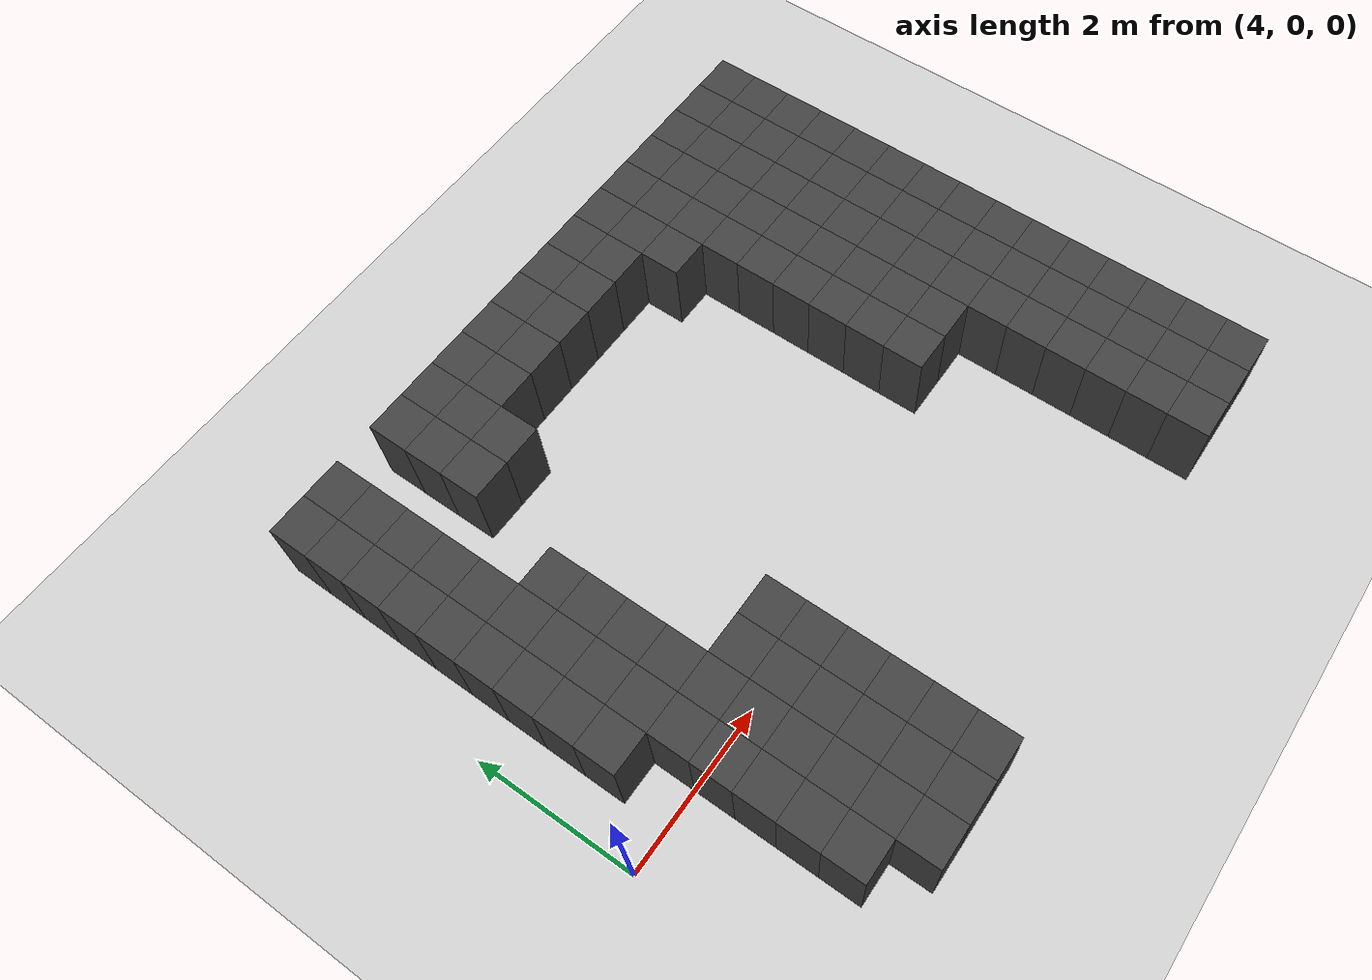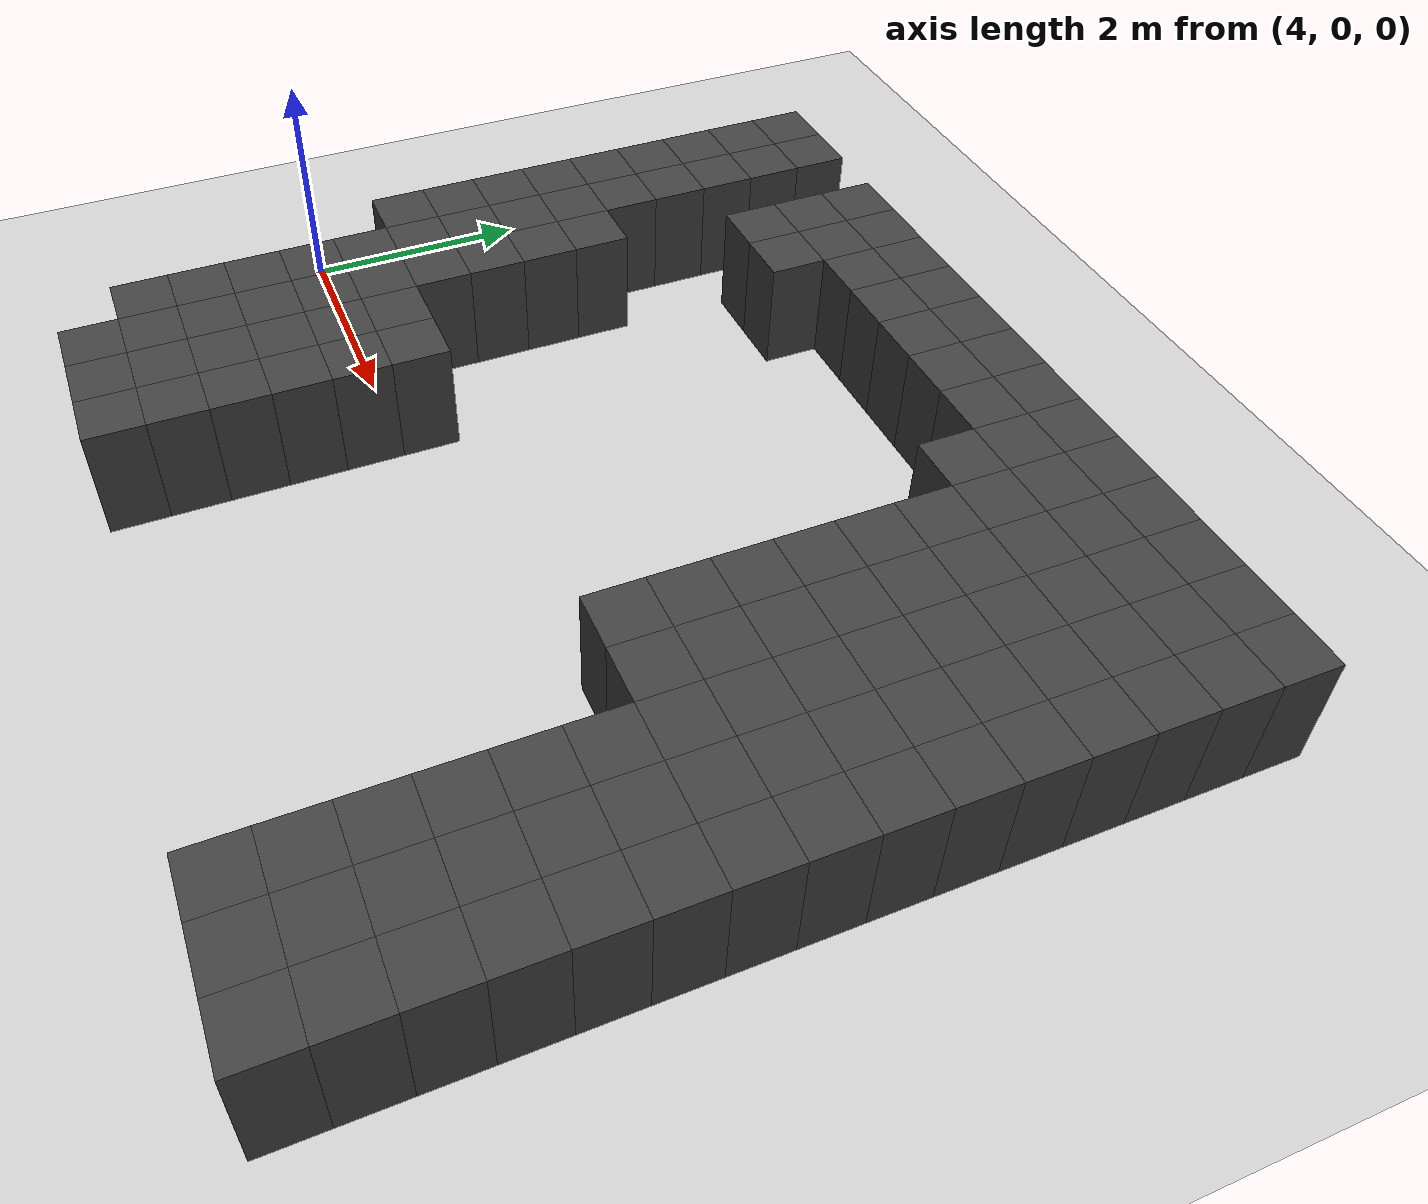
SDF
<sdf version="1.7">
 <world name="map_14056">
  <model name="ground_plane">
   <static>true</static>
   <link name="link">
    <collision name="collision">
     <geometry><plane><normal>0 0 1</normal><size>200 200</size></plane></geometry>
    </collision>
    <visual name="visual">
     <geometry><plane><normal>0 0 1</normal><size>200 200</size></plane></geometry>
     <material><ambient>0.8 0.8 0.8 1</ambient><diffuse>0.8 0.8 0.8 1</diffuse></material>
    </visual>
   </link>
  </model>
  <model name="maze_environment">
   <static>true</static>
   <link name="wall_511">
    <pose>4.750 4.750 0.500 0 0 0</pose>
    <collision name="col"><geometry><box><size>0.5 0.5 1.0</size></box></geometry></collision>
    <visual name="vis">
     <geometry><box><size>0.5 0.5 1.0</size></box></geometry>
     <material><ambient>0.15 0.15 0.15 1</ambient><diffuse>0.25 0.25 0.25 1</diffuse></material>
    </visual>
   </link>
   <link name="wall_512">
    <pose>5.250 4.750 0.500 0 0 0</pose>
    <collision name="col"><geometry><box><size>0.5 0.5 1.0</size></box></geometry></collision>
    <visual name="vis">
     <geometry><box><size>0.5 0.5 1.0</size></box></geometry>
     <material><ambient>0.15 0.15 0.15 1</ambient><diffuse>0.25 0.25 0.25 1</diffuse></material>
    </visual>
   </link>
   <link name="wall_513">
    <pose>6.250 4.750 0.500 0 0 0</pose>
    <collision name="col"><geometry><box><size>0.5 0.5 1.0</size></box></geometry></collision>
    <visual name="vis">
     <geometry><box><size>0.5 0.5 1.0</size></box></geometry>
     <material><ambient>0.15 0.15 0.15 1</ambient><diffuse>0.25 0.25 0.25 1</diffuse></material>
    </visual>
   </link>
   <link name="wall_514">
    <pose>6.750 4.750 0.500 0 0 0</pose>
    <collision name="col"><geometry><box><size>0.5 0.5 1.0</size></box></geometry></collision>
    <visual name="vis">
     <geometry><box><size>0.5 0.5 1.0</size></box></geometry>
     <material><ambient>0.15 0.15 0.15 1</ambient><diffuse>0.25 0.25 0.25 1</diffuse></material>
    </visual>
   </link>
   <link name="wall_515">
    <pose>7.250 4.750 0.500 0 0 0</pose>
    <collision name="col"><geometry><box><size>0.5 0.5 1.0</size></box></geometry></collision>
    <visual name="vis">
     <geometry><box><size>0.5 0.5 1.0</size></box></geometry>
     <material><ambient>0.15 0.15 0.15 1</ambient><diffuse>0.25 0.25 0.25 1</diffuse></material>
    </visual>
   </link>
   <link name="wall_516">
    <pose>7.750 4.750 0.500 0 0 0</pose>
    <collision name="col"><geometry><box><size>0.5 0.5 1.0</size></box></geometry></collision>
    <visual name="vis">
     <geometry><box><size>0.5 0.5 1.0</size></box></geometry>
     <material><ambient>0.15 0.15 0.15 1</ambient><diffuse>0.25 0.25 0.25 1</diffuse></material>
    </visual>
   </link>
   <link name="wall_517">
    <pose>8.250 4.750 0.500 0 0 0</pose>
    <collision name="col"><geometry><box><size>0.5 0.5 1.0</size></box></geometry></collision>
    <visual name="vis">
     <geometry><box><size>0.5 0.5 1.0</size></box></geometry>
     <material><ambient>0.15 0.15 0.15 1</ambient><diffuse>0.25 0.25 0.25 1</diffuse></material>
    </visual>
   </link>
   <link name="wall_518">
    <pose>8.750 4.750 0.500 0 0 0</pose>
    <collision name="col"><geometry><box><size>0.5 0.5 1.0</size></box></geometry></collision>
    <visual name="vis">
     <geometry><box><size>0.5 0.5 1.0</size></box></geometry>
     <material><ambient>0.15 0.15 0.15 1</ambient><diffuse>0.25 0.25 0.25 1</diffuse></material>
    </visual>
   </link>
   <link name="wall_519">
    <pose>9.250 4.750 0.500 0 0 0</pose>
    <collision name="col"><geometry><box><size>0.5 0.5 1.0</size></box></geometry></collision>
    <visual name="vis">
     <geometry><box><size>0.5 0.5 1.0</size></box></geometry>
     <material><ambient>0.15 0.15 0.15 1</ambient><diffuse>0.25 0.25 0.25 1</diffuse></material>
    </visual>
   </link>
   <link name="wall_520">
    <pose>9.750 4.750 0.500 0 0 0</pose>
    <collision name="col"><geometry><box><size>0.5 0.5 1.0</size></box></geometry></collision>
    <visual name="vis">
     <geometry><box><size>0.5 0.5 1.0</size></box></geometry>
     <material><ambient>0.15 0.15 0.15 1</ambient><diffuse>0.25 0.25 0.25 1</diffuse></material>
    </visual>
   </link>
   <link name="wall_521">
    <pose>10.250 4.750 0.500 0 0 0</pose>
    <collision name="col"><geometry><box><size>0.5 0.5 1.0</size></box></geometry></collision>
    <visual name="vis">
     <geometry><box><size>0.5 0.5 1.0</size></box></geometry>
     <material><ambient>0.15 0.15 0.15 1</ambient><diffuse>0.25 0.25 0.25 1</diffuse></material>
    </visual>
   </link>
   <link name="wall_522">
    <pose>10.750 4.750 0.500 0 0 0</pose>
    <collision name="col"><geometry><box><size>0.5 0.5 1.0</size></box></geometry></collision>
    <visual name="vis">
     <geometry><box><size>0.5 0.5 1.0</size></box></geometry>
     <material><ambient>0.15 0.15 0.15 1</ambient><diffuse>0.25 0.25 0.25 1</diffuse></material>
    </visual>
   </link>
   <link name="wall_523">
    <pose>11.250 4.750 0.500 0 0 0</pose>
    <collision name="col"><geometry><box><size>0.5 0.5 1.0</size></box></geometry></collision>
    <visual name="vis">
     <geometry><box><size>0.5 0.5 1.0</size></box></geometry>
     <material><ambient>0.15 0.15 0.15 1</ambient><diffuse>0.25 0.25 0.25 1</diffuse></material>
    </visual>
   </link>
   <link name="wall_524">
    <pose>11.750 4.750 0.500 0 0 0</pose>
    <collision name="col"><geometry><box><size>0.5 0.5 1.0</size></box></geometry></collision>
    <visual name="vis">
     <geometry><box><size>0.5 0.5 1.0</size></box></geometry>
     <material><ambient>0.15 0.15 0.15 1</ambient><diffuse>0.25 0.25 0.25 1</diffuse></material>
    </visual>
   </link>
   <link name="wall_525">
    <pose>12.250 4.750 0.500 0 0 0</pose>
    <collision name="col"><geometry><box><size>0.5 0.5 1.0</size></box></geometry></collision>
    <visual name="vis">
     <geometry><box><size>0.5 0.5 1.0</size></box></geometry>
     <material><ambient>0.15 0.15 0.15 1</ambient><diffuse>0.25 0.25 0.25 1</diffuse></material>
    </visual>
   </link>
   <link name="wall_553">
    <pose>4.750 4.250 0.500 0 0 0</pose>
    <collision name="col"><geometry><box><size>0.5 0.5 1.0</size></box></geometry></collision>
    <visual name="vis">
     <geometry><box><size>0.5 0.5 1.0</size></box></geometry>
     <material><ambient>0.15 0.15 0.15 1</ambient><diffuse>0.25 0.25 0.25 1</diffuse></material>
    </visual>
   </link>
   <link name="wall_554">
    <pose>5.250 4.250 0.500 0 0 0</pose>
    <collision name="col"><geometry><box><size>0.5 0.5 1.0</size></box></geometry></collision>
    <visual name="vis">
     <geometry><box><size>0.5 0.5 1.0</size></box></geometry>
     <material><ambient>0.15 0.15 0.15 1</ambient><diffuse>0.25 0.25 0.25 1</diffuse></material>
    </visual>
   </link>
   <link name="wall_555">
    <pose>6.250 4.250 0.500 0 0 0</pose>
    <collision name="col"><geometry><box><size>0.5 0.5 1.0</size></box></geometry></collision>
    <visual name="vis">
     <geometry><box><size>0.5 0.5 1.0</size></box></geometry>
     <material><ambient>0.15 0.15 0.15 1</ambient><diffuse>0.25 0.25 0.25 1</diffuse></material>
    </visual>
   </link>
   <link name="wall_556">
    <pose>6.750 4.250 0.500 0 0 0</pose>
    <collision name="col"><geometry><box><size>0.5 0.5 1.0</size></box></geometry></collision>
    <visual name="vis">
     <geometry><box><size>0.5 0.5 1.0</size></box></geometry>
     <material><ambient>0.15 0.15 0.15 1</ambient><diffuse>0.25 0.25 0.25 1</diffuse></material>
    </visual>
   </link>
   <link name="wall_557">
    <pose>7.250 4.250 0.500 0 0 0</pose>
    <collision name="col"><geometry><box><size>0.5 0.5 1.0</size></box></geometry></collision>
    <visual name="vis">
     <geometry><box><size>0.5 0.5 1.0</size></box></geometry>
     <material><ambient>0.15 0.15 0.15 1</ambient><diffuse>0.25 0.25 0.25 1</diffuse></material>
    </visual>
   </link>
   <link name="wall_558">
    <pose>7.750 4.250 0.500 0 0 0</pose>
    <collision name="col"><geometry><box><size>0.5 0.5 1.0</size></box></geometry></collision>
    <visual name="vis">
     <geometry><box><size>0.5 0.5 1.0</size></box></geometry>
     <material><ambient>0.15 0.15 0.15 1</ambient><diffuse>0.25 0.25 0.25 1</diffuse></material>
    </visual>
   </link>
   <link name="wall_559">
    <pose>8.250 4.250 0.500 0 0 0</pose>
    <collision name="col"><geometry><box><size>0.5 0.5 1.0</size></box></geometry></collision>
    <visual name="vis">
     <geometry><box><size>0.5 0.5 1.0</size></box></geometry>
     <material><ambient>0.15 0.15 0.15 1</ambient><diffuse>0.25 0.25 0.25 1</diffuse></material>
    </visual>
   </link>
   <link name="wall_560">
    <pose>8.750 4.250 0.500 0 0 0</pose>
    <collision name="col"><geometry><box><size>0.5 0.5 1.0</size></box></geometry></collision>
    <visual name="vis">
     <geometry><box><size>0.5 0.5 1.0</size></box></geometry>
     <material><ambient>0.15 0.15 0.15 1</ambient><diffuse>0.25 0.25 0.25 1</diffuse></material>
    </visual>
   </link>
   <link name="wall_561">
    <pose>9.250 4.250 0.500 0 0 0</pose>
    <collision name="col"><geometry><box><size>0.5 0.5 1.0</size></box></geometry></collision>
    <visual name="vis">
     <geometry><box><size>0.5 0.5 1.0</size></box></geometry>
     <material><ambient>0.15 0.15 0.15 1</ambient><diffuse>0.25 0.25 0.25 1</diffuse></material>
    </visual>
   </link>
   <link name="wall_562">
    <pose>9.750 4.250 0.500 0 0 0</pose>
    <collision name="col"><geometry><box><size>0.5 0.5 1.0</size></box></geometry></collision>
    <visual name="vis">
     <geometry><box><size>0.5 0.5 1.0</size></box></geometry>
     <material><ambient>0.15 0.15 0.15 1</ambient><diffuse>0.25 0.25 0.25 1</diffuse></material>
    </visual>
   </link>
   <link name="wall_563">
    <pose>10.250 4.250 0.500 0 0 0</pose>
    <collision name="col"><geometry><box><size>0.5 0.5 1.0</size></box></geometry></collision>
    <visual name="vis">
     <geometry><box><size>0.5 0.5 1.0</size></box></geometry>
     <material><ambient>0.15 0.15 0.15 1</ambient><diffuse>0.25 0.25 0.25 1</diffuse></material>
    </visual>
   </link>
   <link name="wall_564">
    <pose>10.750 4.250 0.500 0 0 0</pose>
    <collision name="col"><geometry><box><size>0.5 0.5 1.0</size></box></geometry></collision>
    <visual name="vis">
     <geometry><box><size>0.5 0.5 1.0</size></box></geometry>
     <material><ambient>0.15 0.15 0.15 1</ambient><diffuse>0.25 0.25 0.25 1</diffuse></material>
    </visual>
   </link>
   <link name="wall_565">
    <pose>11.250 4.250 0.500 0 0 0</pose>
    <collision name="col"><geometry><box><size>0.5 0.5 1.0</size></box></geometry></collision>
    <visual name="vis">
     <geometry><box><size>0.5 0.5 1.0</size></box></geometry>
     <material><ambient>0.15 0.15 0.15 1</ambient><diffuse>0.25 0.25 0.25 1</diffuse></material>
    </visual>
   </link>
   <link name="wall_566">
    <pose>11.750 4.250 0.500 0 0 0</pose>
    <collision name="col"><geometry><box><size>0.5 0.5 1.0</size></box></geometry></collision>
    <visual name="vis">
     <geometry><box><size>0.5 0.5 1.0</size></box></geometry>
     <material><ambient>0.15 0.15 0.15 1</ambient><diffuse>0.25 0.25 0.25 1</diffuse></material>
    </visual>
   </link>
   <link name="wall_567">
    <pose>12.250 4.250 0.500 0 0 0</pose>
    <collision name="col"><geometry><box><size>0.5 0.5 1.0</size></box></geometry></collision>
    <visual name="vis">
     <geometry><box><size>0.5 0.5 1.0</size></box></geometry>
     <material><ambient>0.15 0.15 0.15 1</ambient><diffuse>0.25 0.25 0.25 1</diffuse></material>
    </visual>
   </link>
   <link name="wall_595">
    <pose>4.750 3.750 0.500 0 0 0</pose>
    <collision name="col"><geometry><box><size>0.5 0.5 1.0</size></box></geometry></collision>
    <visual name="vis">
     <geometry><box><size>0.5 0.5 1.0</size></box></geometry>
     <material><ambient>0.15 0.15 0.15 1</ambient><diffuse>0.25 0.25 0.25 1</diffuse></material>
    </visual>
   </link>
   <link name="wall_596">
    <pose>5.250 3.750 0.500 0 0 0</pose>
    <collision name="col"><geometry><box><size>0.5 0.5 1.0</size></box></geometry></collision>
    <visual name="vis">
     <geometry><box><size>0.5 0.5 1.0</size></box></geometry>
     <material><ambient>0.15 0.15 0.15 1</ambient><diffuse>0.25 0.25 0.25 1</diffuse></material>
    </visual>
   </link>
   <link name="wall_597">
    <pose>6.250 3.750 0.500 0 0 0</pose>
    <collision name="col"><geometry><box><size>0.5 0.5 1.0</size></box></geometry></collision>
    <visual name="vis">
     <geometry><box><size>0.5 0.5 1.0</size></box></geometry>
     <material><ambient>0.15 0.15 0.15 1</ambient><diffuse>0.25 0.25 0.25 1</diffuse></material>
    </visual>
   </link>
   <link name="wall_598">
    <pose>6.750 3.750 0.500 0 0 0</pose>
    <collision name="col"><geometry><box><size>0.5 0.5 1.0</size></box></geometry></collision>
    <visual name="vis">
     <geometry><box><size>0.5 0.5 1.0</size></box></geometry>
     <material><ambient>0.15 0.15 0.15 1</ambient><diffuse>0.25 0.25 0.25 1</diffuse></material>
    </visual>
   </link>
   <link name="wall_599">
    <pose>9.750 3.750 0.500 0 0 0</pose>
    <collision name="col"><geometry><box><size>0.5 0.5 1.0</size></box></geometry></collision>
    <visual name="vis">
     <geometry><box><size>0.5 0.5 1.0</size></box></geometry>
     <material><ambient>0.15 0.15 0.15 1</ambient><diffuse>0.25 0.25 0.25 1</diffuse></material>
    </visual>
   </link>
   <link name="wall_600">
    <pose>10.250 3.750 0.500 0 0 0</pose>
    <collision name="col"><geometry><box><size>0.5 0.5 1.0</size></box></geometry></collision>
    <visual name="vis">
     <geometry><box><size>0.5 0.5 1.0</size></box></geometry>
     <material><ambient>0.15 0.15 0.15 1</ambient><diffuse>0.25 0.25 0.25 1</diffuse></material>
    </visual>
   </link>
   <link name="wall_601">
    <pose>10.750 3.750 0.500 0 0 0</pose>
    <collision name="col"><geometry><box><size>0.5 0.5 1.0</size></box></geometry></collision>
    <visual name="vis">
     <geometry><box><size>0.5 0.5 1.0</size></box></geometry>
     <material><ambient>0.15 0.15 0.15 1</ambient><diffuse>0.25 0.25 0.25 1</diffuse></material>
    </visual>
   </link>
   <link name="wall_602">
    <pose>11.250 3.750 0.500 0 0 0</pose>
    <collision name="col"><geometry><box><size>0.5 0.5 1.0</size></box></geometry></collision>
    <visual name="vis">
     <geometry><box><size>0.5 0.5 1.0</size></box></geometry>
     <material><ambient>0.15 0.15 0.15 1</ambient><diffuse>0.25 0.25 0.25 1</diffuse></material>
    </visual>
   </link>
   <link name="wall_603">
    <pose>11.750 3.750 0.500 0 0 0</pose>
    <collision name="col"><geometry><box><size>0.5 0.5 1.0</size></box></geometry></collision>
    <visual name="vis">
     <geometry><box><size>0.5 0.5 1.0</size></box></geometry>
     <material><ambient>0.15 0.15 0.15 1</ambient><diffuse>0.25 0.25 0.25 1</diffuse></material>
    </visual>
   </link>
   <link name="wall_604">
    <pose>12.250 3.750 0.500 0 0 0</pose>
    <collision name="col"><geometry><box><size>0.5 0.5 1.0</size></box></geometry></collision>
    <visual name="vis">
     <geometry><box><size>0.5 0.5 1.0</size></box></geometry>
     <material><ambient>0.15 0.15 0.15 1</ambient><diffuse>0.25 0.25 0.25 1</diffuse></material>
    </visual>
   </link>
   <link name="wall_632">
    <pose>4.750 3.250 0.500 0 0 0</pose>
    <collision name="col"><geometry><box><size>0.5 0.5 1.0</size></box></geometry></collision>
    <visual name="vis">
     <geometry><box><size>0.5 0.5 1.0</size></box></geometry>
     <material><ambient>0.15 0.15 0.15 1</ambient><diffuse>0.25 0.25 0.25 1</diffuse></material>
    </visual>
   </link>
   <link name="wall_633">
    <pose>5.250 3.250 0.500 0 0 0</pose>
    <collision name="col"><geometry><box><size>0.5 0.5 1.0</size></box></geometry></collision>
    <visual name="vis">
     <geometry><box><size>0.5 0.5 1.0</size></box></geometry>
     <material><ambient>0.15 0.15 0.15 1</ambient><diffuse>0.25 0.25 0.25 1</diffuse></material>
    </visual>
   </link>
   <link name="wall_634">
    <pose>10.250 3.250 0.500 0 0 0</pose>
    <collision name="col"><geometry><box><size>0.5 0.5 1.0</size></box></geometry></collision>
    <visual name="vis">
     <geometry><box><size>0.5 0.5 1.0</size></box></geometry>
     <material><ambient>0.15 0.15 0.15 1</ambient><diffuse>0.25 0.25 0.25 1</diffuse></material>
    </visual>
   </link>
   <link name="wall_635">
    <pose>10.750 3.250 0.500 0 0 0</pose>
    <collision name="col"><geometry><box><size>0.5 0.5 1.0</size></box></geometry></collision>
    <visual name="vis">
     <geometry><box><size>0.5 0.5 1.0</size></box></geometry>
     <material><ambient>0.15 0.15 0.15 1</ambient><diffuse>0.25 0.25 0.25 1</diffuse></material>
    </visual>
   </link>
   <link name="wall_636">
    <pose>11.250 3.250 0.500 0 0 0</pose>
    <collision name="col"><geometry><box><size>0.5 0.5 1.0</size></box></geometry></collision>
    <visual name="vis">
     <geometry><box><size>0.5 0.5 1.0</size></box></geometry>
     <material><ambient>0.15 0.15 0.15 1</ambient><diffuse>0.25 0.25 0.25 1</diffuse></material>
    </visual>
   </link>
   <link name="wall_637">
    <pose>11.750 3.250 0.500 0 0 0</pose>
    <collision name="col"><geometry><box><size>0.5 0.5 1.0</size></box></geometry></collision>
    <visual name="vis">
     <geometry><box><size>0.5 0.5 1.0</size></box></geometry>
     <material><ambient>0.15 0.15 0.15 1</ambient><diffuse>0.25 0.25 0.25 1</diffuse></material>
    </visual>
   </link>
   <link name="wall_638">
    <pose>12.250 3.250 0.500 0 0 0</pose>
    <collision name="col"><geometry><box><size>0.5 0.5 1.0</size></box></geometry></collision>
    <visual name="vis">
     <geometry><box><size>0.5 0.5 1.0</size></box></geometry>
     <material><ambient>0.15 0.15 0.15 1</ambient><diffuse>0.25 0.25 0.25 1</diffuse></material>
    </visual>
   </link>
   <link name="wall_666">
    <pose>4.750 2.750 0.500 0 0 0</pose>
    <collision name="col"><geometry><box><size>0.5 0.5 1.0</size></box></geometry></collision>
    <visual name="vis">
     <geometry><box><size>0.5 0.5 1.0</size></box></geometry>
     <material><ambient>0.15 0.15 0.15 1</ambient><diffuse>0.25 0.25 0.25 1</diffuse></material>
    </visual>
   </link>
   <link name="wall_667">
    <pose>5.250 2.750 0.500 0 0 0</pose>
    <collision name="col"><geometry><box><size>0.5 0.5 1.0</size></box></geometry></collision>
    <visual name="vis">
     <geometry><box><size>0.5 0.5 1.0</size></box></geometry>
     <material><ambient>0.15 0.15 0.15 1</ambient><diffuse>0.25 0.25 0.25 1</diffuse></material>
    </visual>
   </link>
   <link name="wall_668">
    <pose>10.250 2.750 0.500 0 0 0</pose>
    <collision name="col"><geometry><box><size>0.5 0.5 1.0</size></box></geometry></collision>
    <visual name="vis">
     <geometry><box><size>0.5 0.5 1.0</size></box></geometry>
     <material><ambient>0.15 0.15 0.15 1</ambient><diffuse>0.25 0.25 0.25 1</diffuse></material>
    </visual>
   </link>
   <link name="wall_669">
    <pose>10.750 2.750 0.500 0 0 0</pose>
    <collision name="col"><geometry><box><size>0.5 0.5 1.0</size></box></geometry></collision>
    <visual name="vis">
     <geometry><box><size>0.5 0.5 1.0</size></box></geometry>
     <material><ambient>0.15 0.15 0.15 1</ambient><diffuse>0.25 0.25 0.25 1</diffuse></material>
    </visual>
   </link>
   <link name="wall_670">
    <pose>11.250 2.750 0.500 0 0 0</pose>
    <collision name="col"><geometry><box><size>0.5 0.5 1.0</size></box></geometry></collision>
    <visual name="vis">
     <geometry><box><size>0.5 0.5 1.0</size></box></geometry>
     <material><ambient>0.15 0.15 0.15 1</ambient><diffuse>0.25 0.25 0.25 1</diffuse></material>
    </visual>
   </link>
   <link name="wall_671">
    <pose>11.750 2.750 0.500 0 0 0</pose>
    <collision name="col"><geometry><box><size>0.5 0.5 1.0</size></box></geometry></collision>
    <visual name="vis">
     <geometry><box><size>0.5 0.5 1.0</size></box></geometry>
     <material><ambient>0.15 0.15 0.15 1</ambient><diffuse>0.25 0.25 0.25 1</diffuse></material>
    </visual>
   </link>
   <link name="wall_672">
    <pose>12.250 2.750 0.500 0 0 0</pose>
    <collision name="col"><geometry><box><size>0.5 0.5 1.0</size></box></geometry></collision>
    <visual name="vis">
     <geometry><box><size>0.5 0.5 1.0</size></box></geometry>
     <material><ambient>0.15 0.15 0.15 1</ambient><diffuse>0.25 0.25 0.25 1</diffuse></material>
    </visual>
   </link>
   <link name="wall_706">
    <pose>4.750 2.250 0.500 0 0 0</pose>
    <collision name="col"><geometry><box><size>0.5 0.5 1.0</size></box></geometry></collision>
    <visual name="vis">
     <geometry><box><size>0.5 0.5 1.0</size></box></geometry>
     <material><ambient>0.15 0.15 0.15 1</ambient><diffuse>0.25 0.25 0.25 1</diffuse></material>
    </visual>
   </link>
   <link name="wall_707">
    <pose>5.250 2.250 0.500 0 0 0</pose>
    <collision name="col"><geometry><box><size>0.5 0.5 1.0</size></box></geometry></collision>
    <visual name="vis">
     <geometry><box><size>0.5 0.5 1.0</size></box></geometry>
     <material><ambient>0.15 0.15 0.15 1</ambient><diffuse>0.25 0.25 0.25 1</diffuse></material>
    </visual>
   </link>
   <link name="wall_708">
    <pose>5.750 2.250 0.500 0 0 0</pose>
    <collision name="col"><geometry><box><size>0.5 0.5 1.0</size></box></geometry></collision>
    <visual name="vis">
     <geometry><box><size>0.5 0.5 1.0</size></box></geometry>
     <material><ambient>0.15 0.15 0.15 1</ambient><diffuse>0.25 0.25 0.25 1</diffuse></material>
    </visual>
   </link>
   <link name="wall_709">
    <pose>10.250 2.250 0.500 0 0 0</pose>
    <collision name="col"><geometry><box><size>0.5 0.5 1.0</size></box></geometry></collision>
    <visual name="vis">
     <geometry><box><size>0.5 0.5 1.0</size></box></geometry>
     <material><ambient>0.15 0.15 0.15 1</ambient><diffuse>0.25 0.25 0.25 1</diffuse></material>
    </visual>
   </link>
   <link name="wall_710">
    <pose>10.750 2.250 0.500 0 0 0</pose>
    <collision name="col"><geometry><box><size>0.5 0.5 1.0</size></box></geometry></collision>
    <visual name="vis">
     <geometry><box><size>0.5 0.5 1.0</size></box></geometry>
     <material><ambient>0.15 0.15 0.15 1</ambient><diffuse>0.25 0.25 0.25 1</diffuse></material>
    </visual>
   </link>
   <link name="wall_711">
    <pose>11.250 2.250 0.500 0 0 0</pose>
    <collision name="col"><geometry><box><size>0.5 0.5 1.0</size></box></geometry></collision>
    <visual name="vis">
     <geometry><box><size>0.5 0.5 1.0</size></box></geometry>
     <material><ambient>0.15 0.15 0.15 1</ambient><diffuse>0.25 0.25 0.25 1</diffuse></material>
    </visual>
   </link>
   <link name="wall_712">
    <pose>11.750 2.250 0.500 0 0 0</pose>
    <collision name="col"><geometry><box><size>0.5 0.5 1.0</size></box></geometry></collision>
    <visual name="vis">
     <geometry><box><size>0.5 0.5 1.0</size></box></geometry>
     <material><ambient>0.15 0.15 0.15 1</ambient><diffuse>0.25 0.25 0.25 1</diffuse></material>
    </visual>
   </link>
   <link name="wall_713">
    <pose>12.250 2.250 0.500 0 0 0</pose>
    <collision name="col"><geometry><box><size>0.5 0.5 1.0</size></box></geometry></collision>
    <visual name="vis">
     <geometry><box><size>0.5 0.5 1.0</size></box></geometry>
     <material><ambient>0.15 0.15 0.15 1</ambient><diffuse>0.25 0.25 0.25 1</diffuse></material>
    </visual>
   </link>
   <link name="wall_747">
    <pose>4.750 1.750 0.500 0 0 0</pose>
    <collision name="col"><geometry><box><size>0.5 0.5 1.0</size></box></geometry></collision>
    <visual name="vis">
     <geometry><box><size>0.5 0.5 1.0</size></box></geometry>
     <material><ambient>0.15 0.15 0.15 1</ambient><diffuse>0.25 0.25 0.25 1</diffuse></material>
    </visual>
   </link>
   <link name="wall_748">
    <pose>5.250 1.750 0.500 0 0 0</pose>
    <collision name="col"><geometry><box><size>0.5 0.5 1.0</size></box></geometry></collision>
    <visual name="vis">
     <geometry><box><size>0.5 0.5 1.0</size></box></geometry>
     <material><ambient>0.15 0.15 0.15 1</ambient><diffuse>0.25 0.25 0.25 1</diffuse></material>
    </visual>
   </link>
   <link name="wall_749">
    <pose>5.750 1.750 0.500 0 0 0</pose>
    <collision name="col"><geometry><box><size>0.5 0.5 1.0</size></box></geometry></collision>
    <visual name="vis">
     <geometry><box><size>0.5 0.5 1.0</size></box></geometry>
     <material><ambient>0.15 0.15 0.15 1</ambient><diffuse>0.25 0.25 0.25 1</diffuse></material>
    </visual>
   </link>
   <link name="wall_750">
    <pose>10.250 1.750 0.500 0 0 0</pose>
    <collision name="col"><geometry><box><size>0.5 0.5 1.0</size></box></geometry></collision>
    <visual name="vis">
     <geometry><box><size>0.5 0.5 1.0</size></box></geometry>
     <material><ambient>0.15 0.15 0.15 1</ambient><diffuse>0.25 0.25 0.25 1</diffuse></material>
    </visual>
   </link>
   <link name="wall_751">
    <pose>10.750 1.750 0.500 0 0 0</pose>
    <collision name="col"><geometry><box><size>0.5 0.5 1.0</size></box></geometry></collision>
    <visual name="vis">
     <geometry><box><size>0.5 0.5 1.0</size></box></geometry>
     <material><ambient>0.15 0.15 0.15 1</ambient><diffuse>0.25 0.25 0.25 1</diffuse></material>
    </visual>
   </link>
   <link name="wall_752">
    <pose>11.250 1.750 0.500 0 0 0</pose>
    <collision name="col"><geometry><box><size>0.5 0.5 1.0</size></box></geometry></collision>
    <visual name="vis">
     <geometry><box><size>0.5 0.5 1.0</size></box></geometry>
     <material><ambient>0.15 0.15 0.15 1</ambient><diffuse>0.25 0.25 0.25 1</diffuse></material>
    </visual>
   </link>
   <link name="wall_753">
    <pose>11.750 1.750 0.500 0 0 0</pose>
    <collision name="col"><geometry><box><size>0.5 0.5 1.0</size></box></geometry></collision>
    <visual name="vis">
     <geometry><box><size>0.5 0.5 1.0</size></box></geometry>
     <material><ambient>0.15 0.15 0.15 1</ambient><diffuse>0.25 0.25 0.25 1</diffuse></material>
    </visual>
   </link>
   <link name="wall_754">
    <pose>12.250 1.750 0.500 0 0 0</pose>
    <collision name="col"><geometry><box><size>0.5 0.5 1.0</size></box></geometry></collision>
    <visual name="vis">
     <geometry><box><size>0.5 0.5 1.0</size></box></geometry>
     <material><ambient>0.15 0.15 0.15 1</ambient><diffuse>0.25 0.25 0.25 1</diffuse></material>
    </visual>
   </link>
   <link name="wall_788">
    <pose>4.750 1.250 0.500 0 0 0</pose>
    <collision name="col"><geometry><box><size>0.5 0.5 1.0</size></box></geometry></collision>
    <visual name="vis">
     <geometry><box><size>0.5 0.5 1.0</size></box></geometry>
     <material><ambient>0.15 0.15 0.15 1</ambient><diffuse>0.25 0.25 0.25 1</diffuse></material>
    </visual>
   </link>
   <link name="wall_789">
    <pose>5.250 1.250 0.500 0 0 0</pose>
    <collision name="col"><geometry><box><size>0.5 0.5 1.0</size></box></geometry></collision>
    <visual name="vis">
     <geometry><box><size>0.5 0.5 1.0</size></box></geometry>
     <material><ambient>0.15 0.15 0.15 1</ambient><diffuse>0.25 0.25 0.25 1</diffuse></material>
    </visual>
   </link>
   <link name="wall_790">
    <pose>5.750 1.250 0.500 0 0 0</pose>
    <collision name="col"><geometry><box><size>0.5 0.5 1.0</size></box></geometry></collision>
    <visual name="vis">
     <geometry><box><size>0.5 0.5 1.0</size></box></geometry>
     <material><ambient>0.15 0.15 0.15 1</ambient><diffuse>0.25 0.25 0.25 1</diffuse></material>
    </visual>
   </link>
   <link name="wall_791">
    <pose>10.250 1.250 0.500 0 0 0</pose>
    <collision name="col"><geometry><box><size>0.5 0.5 1.0</size></box></geometry></collision>
    <visual name="vis">
     <geometry><box><size>0.5 0.5 1.0</size></box></geometry>
     <material><ambient>0.15 0.15 0.15 1</ambient><diffuse>0.25 0.25 0.25 1</diffuse></material>
    </visual>
   </link>
   <link name="wall_792">
    <pose>10.750 1.250 0.500 0 0 0</pose>
    <collision name="col"><geometry><box><size>0.5 0.5 1.0</size></box></geometry></collision>
    <visual name="vis">
     <geometry><box><size>0.5 0.5 1.0</size></box></geometry>
     <material><ambient>0.15 0.15 0.15 1</ambient><diffuse>0.25 0.25 0.25 1</diffuse></material>
    </visual>
   </link>
   <link name="wall_793">
    <pose>11.250 1.250 0.500 0 0 0</pose>
    <collision name="col"><geometry><box><size>0.5 0.5 1.0</size></box></geometry></collision>
    <visual name="vis">
     <geometry><box><size>0.5 0.5 1.0</size></box></geometry>
     <material><ambient>0.15 0.15 0.15 1</ambient><diffuse>0.25 0.25 0.25 1</diffuse></material>
    </visual>
   </link>
   <link name="wall_794">
    <pose>11.750 1.250 0.500 0 0 0</pose>
    <collision name="col"><geometry><box><size>0.5 0.5 1.0</size></box></geometry></collision>
    <visual name="vis">
     <geometry><box><size>0.5 0.5 1.0</size></box></geometry>
     <material><ambient>0.15 0.15 0.15 1</ambient><diffuse>0.25 0.25 0.25 1</diffuse></material>
    </visual>
   </link>
   <link name="wall_795">
    <pose>12.250 1.250 0.500 0 0 0</pose>
    <collision name="col"><geometry><box><size>0.5 0.5 1.0</size></box></geometry></collision>
    <visual name="vis">
     <geometry><box><size>0.5 0.5 1.0</size></box></geometry>
     <material><ambient>0.15 0.15 0.15 1</ambient><diffuse>0.25 0.25 0.25 1</diffuse></material>
    </visual>
   </link>
   <link name="wall_829">
    <pose>4.750 0.750 0.500 0 0 0</pose>
    <collision name="col"><geometry><box><size>0.5 0.5 1.0</size></box></geometry></collision>
    <visual name="vis">
     <geometry><box><size>0.5 0.5 1.0</size></box></geometry>
     <material><ambient>0.15 0.15 0.15 1</ambient><diffuse>0.25 0.25 0.25 1</diffuse></material>
    </visual>
   </link>
   <link name="wall_830">
    <pose>5.250 0.750 0.500 0 0 0</pose>
    <collision name="col"><geometry><box><size>0.5 0.5 1.0</size></box></geometry></collision>
    <visual name="vis">
     <geometry><box><size>0.5 0.5 1.0</size></box></geometry>
     <material><ambient>0.15 0.15 0.15 1</ambient><diffuse>0.25 0.25 0.25 1</diffuse></material>
    </visual>
   </link>
   <link name="wall_831">
    <pose>5.750 0.750 0.500 0 0 0</pose>
    <collision name="col"><geometry><box><size>0.5 0.5 1.0</size></box></geometry></collision>
    <visual name="vis">
     <geometry><box><size>0.5 0.5 1.0</size></box></geometry>
     <material><ambient>0.15 0.15 0.15 1</ambient><diffuse>0.25 0.25 0.25 1</diffuse></material>
    </visual>
   </link>
   <link name="wall_832">
    <pose>10.250 0.750 0.500 0 0 0</pose>
    <collision name="col"><geometry><box><size>0.5 0.5 1.0</size></box></geometry></collision>
    <visual name="vis">
     <geometry><box><size>0.5 0.5 1.0</size></box></geometry>
     <material><ambient>0.15 0.15 0.15 1</ambient><diffuse>0.25 0.25 0.25 1</diffuse></material>
    </visual>
   </link>
   <link name="wall_833">
    <pose>10.750 0.750 0.500 0 0 0</pose>
    <collision name="col"><geometry><box><size>0.5 0.5 1.0</size></box></geometry></collision>
    <visual name="vis">
     <geometry><box><size>0.5 0.5 1.0</size></box></geometry>
     <material><ambient>0.15 0.15 0.15 1</ambient><diffuse>0.25 0.25 0.25 1</diffuse></material>
    </visual>
   </link>
   <link name="wall_834">
    <pose>11.250 0.750 0.500 0 0 0</pose>
    <collision name="col"><geometry><box><size>0.5 0.5 1.0</size></box></geometry></collision>
    <visual name="vis">
     <geometry><box><size>0.5 0.5 1.0</size></box></geometry>
     <material><ambient>0.15 0.15 0.15 1</ambient><diffuse>0.25 0.25 0.25 1</diffuse></material>
    </visual>
   </link>
   <link name="wall_835">
    <pose>11.750 0.750 0.500 0 0 0</pose>
    <collision name="col"><geometry><box><size>0.5 0.5 1.0</size></box></geometry></collision>
    <visual name="vis">
     <geometry><box><size>0.5 0.5 1.0</size></box></geometry>
     <material><ambient>0.15 0.15 0.15 1</ambient><diffuse>0.25 0.25 0.25 1</diffuse></material>
    </visual>
   </link>
   <link name="wall_836">
    <pose>12.250 0.750 0.500 0 0 0</pose>
    <collision name="col"><geometry><box><size>0.5 0.5 1.0</size></box></geometry></collision>
    <visual name="vis">
     <geometry><box><size>0.5 0.5 1.0</size></box></geometry>
     <material><ambient>0.15 0.15 0.15 1</ambient><diffuse>0.25 0.25 0.25 1</diffuse></material>
    </visual>
   </link>
   <link name="wall_871">
    <pose>5.250 0.250 0.500 0 0 0</pose>
    <collision name="col"><geometry><box><size>0.5 0.5 1.0</size></box></geometry></collision>
    <visual name="vis">
     <geometry><box><size>0.5 0.5 1.0</size></box></geometry>
     <material><ambient>0.15 0.15 0.15 1</ambient><diffuse>0.25 0.25 0.25 1</diffuse></material>
    </visual>
   </link>
   <link name="wall_872">
    <pose>5.750 0.250 0.500 0 0 0</pose>
    <collision name="col"><geometry><box><size>0.5 0.5 1.0</size></box></geometry></collision>
    <visual name="vis">
     <geometry><box><size>0.5 0.5 1.0</size></box></geometry>
     <material><ambient>0.15 0.15 0.15 1</ambient><diffuse>0.25 0.25 0.25 1</diffuse></material>
    </visual>
   </link>
   <link name="wall_873">
    <pose>6.250 0.250 0.500 0 0 0</pose>
    <collision name="col"><geometry><box><size>0.5 0.5 1.0</size></box></geometry></collision>
    <visual name="vis">
     <geometry><box><size>0.5 0.5 1.0</size></box></geometry>
     <material><ambient>0.15 0.15 0.15 1</ambient><diffuse>0.25 0.25 0.25 1</diffuse></material>
    </visual>
   </link>
   <link name="wall_874">
    <pose>6.750 0.250 0.500 0 0 0</pose>
    <collision name="col"><geometry><box><size>0.5 0.5 1.0</size></box></geometry></collision>
    <visual name="vis">
     <geometry><box><size>0.5 0.5 1.0</size></box></geometry>
     <material><ambient>0.15 0.15 0.15 1</ambient><diffuse>0.25 0.25 0.25 1</diffuse></material>
    </visual>
   </link>
   <link name="wall_875">
    <pose>11.250 0.250 0.500 0 0 0</pose>
    <collision name="col"><geometry><box><size>0.5 0.5 1.0</size></box></geometry></collision>
    <visual name="vis">
     <geometry><box><size>0.5 0.5 1.0</size></box></geometry>
     <material><ambient>0.15 0.15 0.15 1</ambient><diffuse>0.25 0.25 0.25 1</diffuse></material>
    </visual>
   </link>
   <link name="wall_876">
    <pose>11.750 0.250 0.500 0 0 0</pose>
    <collision name="col"><geometry><box><size>0.5 0.5 1.0</size></box></geometry></collision>
    <visual name="vis">
     <geometry><box><size>0.5 0.5 1.0</size></box></geometry>
     <material><ambient>0.15 0.15 0.15 1</ambient><diffuse>0.25 0.25 0.25 1</diffuse></material>
    </visual>
   </link>
   <link name="wall_877">
    <pose>12.250 0.250 0.500 0 0 0</pose>
    <collision name="col"><geometry><box><size>0.5 0.5 1.0</size></box></geometry></collision>
    <visual name="vis">
     <geometry><box><size>0.5 0.5 1.0</size></box></geometry>
     <material><ambient>0.15 0.15 0.15 1</ambient><diffuse>0.25 0.25 0.25 1</diffuse></material>
    </visual>
   </link>
   <link name="wall_912">
    <pose>5.250 -0.250 0.500 0 0 0</pose>
    <collision name="col"><geometry><box><size>0.5 0.5 1.0</size></box></geometry></collision>
    <visual name="vis">
     <geometry><box><size>0.5 0.5 1.0</size></box></geometry>
     <material><ambient>0.15 0.15 0.15 1</ambient><diffuse>0.25 0.25 0.25 1</diffuse></material>
    </visual>
   </link>
   <link name="wall_913">
    <pose>5.750 -0.250 0.500 0 0 0</pose>
    <collision name="col"><geometry><box><size>0.5 0.5 1.0</size></box></geometry></collision>
    <visual name="vis">
     <geometry><box><size>0.5 0.5 1.0</size></box></geometry>
     <material><ambient>0.15 0.15 0.15 1</ambient><diffuse>0.25 0.25 0.25 1</diffuse></material>
    </visual>
   </link>
   <link name="wall_914">
    <pose>6.250 -0.250 0.500 0 0 0</pose>
    <collision name="col"><geometry><box><size>0.5 0.5 1.0</size></box></geometry></collision>
    <visual name="vis">
     <geometry><box><size>0.5 0.5 1.0</size></box></geometry>
     <material><ambient>0.15 0.15 0.15 1</ambient><diffuse>0.25 0.25 0.25 1</diffuse></material>
    </visual>
   </link>
   <link name="wall_915">
    <pose>6.750 -0.250 0.500 0 0 0</pose>
    <collision name="col"><geometry><box><size>0.5 0.5 1.0</size></box></geometry></collision>
    <visual name="vis">
     <geometry><box><size>0.5 0.5 1.0</size></box></geometry>
     <material><ambient>0.15 0.15 0.15 1</ambient><diffuse>0.25 0.25 0.25 1</diffuse></material>
    </visual>
   </link>
   <link name="wall_916">
    <pose>11.250 -0.250 0.500 0 0 0</pose>
    <collision name="col"><geometry><box><size>0.5 0.5 1.0</size></box></geometry></collision>
    <visual name="vis">
     <geometry><box><size>0.5 0.5 1.0</size></box></geometry>
     <material><ambient>0.15 0.15 0.15 1</ambient><diffuse>0.25 0.25 0.25 1</diffuse></material>
    </visual>
   </link>
   <link name="wall_917">
    <pose>11.750 -0.250 0.500 0 0 0</pose>
    <collision name="col"><geometry><box><size>0.5 0.5 1.0</size></box></geometry></collision>
    <visual name="vis">
     <geometry><box><size>0.5 0.5 1.0</size></box></geometry>
     <material><ambient>0.15 0.15 0.15 1</ambient><diffuse>0.25 0.25 0.25 1</diffuse></material>
    </visual>
   </link>
   <link name="wall_918">
    <pose>12.250 -0.250 0.500 0 0 0</pose>
    <collision name="col"><geometry><box><size>0.5 0.5 1.0</size></box></geometry></collision>
    <visual name="vis">
     <geometry><box><size>0.5 0.5 1.0</size></box></geometry>
     <material><ambient>0.15 0.15 0.15 1</ambient><diffuse>0.25 0.25 0.25 1</diffuse></material>
    </visual>
   </link>
   <link name="wall_953">
    <pose>5.250 -0.750 0.500 0 0 0</pose>
    <collision name="col"><geometry><box><size>0.5 0.5 1.0</size></box></geometry></collision>
    <visual name="vis">
     <geometry><box><size>0.5 0.5 1.0</size></box></geometry>
     <material><ambient>0.15 0.15 0.15 1</ambient><diffuse>0.25 0.25 0.25 1</diffuse></material>
    </visual>
   </link>
   <link name="wall_954">
    <pose>5.750 -0.750 0.500 0 0 0</pose>
    <collision name="col"><geometry><box><size>0.5 0.5 1.0</size></box></geometry></collision>
    <visual name="vis">
     <geometry><box><size>0.5 0.5 1.0</size></box></geometry>
     <material><ambient>0.15 0.15 0.15 1</ambient><diffuse>0.25 0.25 0.25 1</diffuse></material>
    </visual>
   </link>
   <link name="wall_955">
    <pose>6.250 -0.750 0.500 0 0 0</pose>
    <collision name="col"><geometry><box><size>0.5 0.5 1.0</size></box></geometry></collision>
    <visual name="vis">
     <geometry><box><size>0.5 0.5 1.0</size></box></geometry>
     <material><ambient>0.15 0.15 0.15 1</ambient><diffuse>0.25 0.25 0.25 1</diffuse></material>
    </visual>
   </link>
   <link name="wall_956">
    <pose>6.750 -0.750 0.500 0 0 0</pose>
    <collision name="col"><geometry><box><size>0.5 0.5 1.0</size></box></geometry></collision>
    <visual name="vis">
     <geometry><box><size>0.5 0.5 1.0</size></box></geometry>
     <material><ambient>0.15 0.15 0.15 1</ambient><diffuse>0.25 0.25 0.25 1</diffuse></material>
    </visual>
   </link>
   <link name="wall_957">
    <pose>11.250 -0.750 0.500 0 0 0</pose>
    <collision name="col"><geometry><box><size>0.5 0.5 1.0</size></box></geometry></collision>
    <visual name="vis">
     <geometry><box><size>0.5 0.5 1.0</size></box></geometry>
     <material><ambient>0.15 0.15 0.15 1</ambient><diffuse>0.25 0.25 0.25 1</diffuse></material>
    </visual>
   </link>
   <link name="wall_958">
    <pose>11.750 -0.750 0.500 0 0 0</pose>
    <collision name="col"><geometry><box><size>0.5 0.5 1.0</size></box></geometry></collision>
    <visual name="vis">
     <geometry><box><size>0.5 0.5 1.0</size></box></geometry>
     <material><ambient>0.15 0.15 0.15 1</ambient><diffuse>0.25 0.25 0.25 1</diffuse></material>
    </visual>
   </link>
   <link name="wall_959">
    <pose>12.250 -0.750 0.500 0 0 0</pose>
    <collision name="col"><geometry><box><size>0.5 0.5 1.0</size></box></geometry></collision>
    <visual name="vis">
     <geometry><box><size>0.5 0.5 1.0</size></box></geometry>
     <material><ambient>0.15 0.15 0.15 1</ambient><diffuse>0.25 0.25 0.25 1</diffuse></material>
    </visual>
   </link>
   <link name="wall_994">
    <pose>5.250 -1.250 0.500 0 0 0</pose>
    <collision name="col"><geometry><box><size>0.5 0.5 1.0</size></box></geometry></collision>
    <visual name="vis">
     <geometry><box><size>0.5 0.5 1.0</size></box></geometry>
     <material><ambient>0.15 0.15 0.15 1</ambient><diffuse>0.25 0.25 0.25 1</diffuse></material>
    </visual>
   </link>
   <link name="wall_995">
    <pose>5.750 -1.250 0.500 0 0 0</pose>
    <collision name="col"><geometry><box><size>0.5 0.5 1.0</size></box></geometry></collision>
    <visual name="vis">
     <geometry><box><size>0.5 0.5 1.0</size></box></geometry>
     <material><ambient>0.15 0.15 0.15 1</ambient><diffuse>0.25 0.25 0.25 1</diffuse></material>
    </visual>
   </link>
   <link name="wall_996">
    <pose>6.250 -1.250 0.500 0 0 0</pose>
    <collision name="col"><geometry><box><size>0.5 0.5 1.0</size></box></geometry></collision>
    <visual name="vis">
     <geometry><box><size>0.5 0.5 1.0</size></box></geometry>
     <material><ambient>0.15 0.15 0.15 1</ambient><diffuse>0.25 0.25 0.25 1</diffuse></material>
    </visual>
   </link>
   <link name="wall_997">
    <pose>6.750 -1.250 0.500 0 0 0</pose>
    <collision name="col"><geometry><box><size>0.5 0.5 1.0</size></box></geometry></collision>
    <visual name="vis">
     <geometry><box><size>0.5 0.5 1.0</size></box></geometry>
     <material><ambient>0.15 0.15 0.15 1</ambient><diffuse>0.25 0.25 0.25 1</diffuse></material>
    </visual>
   </link>
   <link name="wall_998">
    <pose>11.250 -1.250 0.500 0 0 0</pose>
    <collision name="col"><geometry><box><size>0.5 0.5 1.0</size></box></geometry></collision>
    <visual name="vis">
     <geometry><box><size>0.5 0.5 1.0</size></box></geometry>
     <material><ambient>0.15 0.15 0.15 1</ambient><diffuse>0.25 0.25 0.25 1</diffuse></material>
    </visual>
   </link>
   <link name="wall_999">
    <pose>11.750 -1.250 0.500 0 0 0</pose>
    <collision name="col"><geometry><box><size>0.5 0.5 1.0</size></box></geometry></collision>
    <visual name="vis">
     <geometry><box><size>0.5 0.5 1.0</size></box></geometry>
     <material><ambient>0.15 0.15 0.15 1</ambient><diffuse>0.25 0.25 0.25 1</diffuse></material>
    </visual>
   </link>
   <link name="wall_1000">
    <pose>12.250 -1.250 0.500 0 0 0</pose>
    <collision name="col"><geometry><box><size>0.5 0.5 1.0</size></box></geometry></collision>
    <visual name="vis">
     <geometry><box><size>0.5 0.5 1.0</size></box></geometry>
     <material><ambient>0.15 0.15 0.15 1</ambient><diffuse>0.25 0.25 0.25 1</diffuse></material>
    </visual>
   </link>
   <link name="wall_1035">
    <pose>5.250 -1.750 0.500 0 0 0</pose>
    <collision name="col"><geometry><box><size>0.5 0.5 1.0</size></box></geometry></collision>
    <visual name="vis">
     <geometry><box><size>0.5 0.5 1.0</size></box></geometry>
     <material><ambient>0.15 0.15 0.15 1</ambient><diffuse>0.25 0.25 0.25 1</diffuse></material>
    </visual>
   </link>
   <link name="wall_1036">
    <pose>5.750 -1.750 0.500 0 0 0</pose>
    <collision name="col"><geometry><box><size>0.5 0.5 1.0</size></box></geometry></collision>
    <visual name="vis">
     <geometry><box><size>0.5 0.5 1.0</size></box></geometry>
     <material><ambient>0.15 0.15 0.15 1</ambient><diffuse>0.25 0.25 0.25 1</diffuse></material>
    </visual>
   </link>
   <link name="wall_1037">
    <pose>6.250 -1.750 0.500 0 0 0</pose>
    <collision name="col"><geometry><box><size>0.5 0.5 1.0</size></box></geometry></collision>
    <visual name="vis">
     <geometry><box><size>0.5 0.5 1.0</size></box></geometry>
     <material><ambient>0.15 0.15 0.15 1</ambient><diffuse>0.25 0.25 0.25 1</diffuse></material>
    </visual>
   </link>
   <link name="wall_1038">
    <pose>6.750 -1.750 0.500 0 0 0</pose>
    <collision name="col"><geometry><box><size>0.5 0.5 1.0</size></box></geometry></collision>
    <visual name="vis">
     <geometry><box><size>0.5 0.5 1.0</size></box></geometry>
     <material><ambient>0.15 0.15 0.15 1</ambient><diffuse>0.25 0.25 0.25 1</diffuse></material>
    </visual>
   </link>
   <link name="wall_1039">
    <pose>11.250 -1.750 0.500 0 0 0</pose>
    <collision name="col"><geometry><box><size>0.5 0.5 1.0</size></box></geometry></collision>
    <visual name="vis">
     <geometry><box><size>0.5 0.5 1.0</size></box></geometry>
     <material><ambient>0.15 0.15 0.15 1</ambient><diffuse>0.25 0.25 0.25 1</diffuse></material>
    </visual>
   </link>
   <link name="wall_1040">
    <pose>11.750 -1.750 0.500 0 0 0</pose>
    <collision name="col"><geometry><box><size>0.5 0.5 1.0</size></box></geometry></collision>
    <visual name="vis">
     <geometry><box><size>0.5 0.5 1.0</size></box></geometry>
     <material><ambient>0.15 0.15 0.15 1</ambient><diffuse>0.25 0.25 0.25 1</diffuse></material>
    </visual>
   </link>
   <link name="wall_1041">
    <pose>12.250 -1.750 0.500 0 0 0</pose>
    <collision name="col"><geometry><box><size>0.5 0.5 1.0</size></box></geometry></collision>
    <visual name="vis">
     <geometry><box><size>0.5 0.5 1.0</size></box></geometry>
     <material><ambient>0.15 0.15 0.15 1</ambient><diffuse>0.25 0.25 0.25 1</diffuse></material>
    </visual>
   </link>
   <link name="wall_1069">
    <pose>5.750 -2.250 0.500 0 0 0</pose>
    <collision name="col"><geometry><box><size>0.5 0.5 1.0</size></box></geometry></collision>
    <visual name="vis">
     <geometry><box><size>0.5 0.5 1.0</size></box></geometry>
     <material><ambient>0.15 0.15 0.15 1</ambient><diffuse>0.25 0.25 0.25 1</diffuse></material>
    </visual>
   </link>
   <link name="wall_1070">
    <pose>6.250 -2.250 0.500 0 0 0</pose>
    <collision name="col"><geometry><box><size>0.5 0.5 1.0</size></box></geometry></collision>
    <visual name="vis">
     <geometry><box><size>0.5 0.5 1.0</size></box></geometry>
     <material><ambient>0.15 0.15 0.15 1</ambient><diffuse>0.25 0.25 0.25 1</diffuse></material>
    </visual>
   </link>
   <link name="wall_1071">
    <pose>6.750 -2.250 0.500 0 0 0</pose>
    <collision name="col"><geometry><box><size>0.5 0.5 1.0</size></box></geometry></collision>
    <visual name="vis">
     <geometry><box><size>0.5 0.5 1.0</size></box></geometry>
     <material><ambient>0.15 0.15 0.15 1</ambient><diffuse>0.25 0.25 0.25 1</diffuse></material>
    </visual>
   </link>
   <link name="wall_1072">
    <pose>11.250 -2.250 0.500 0 0 0</pose>
    <collision name="col"><geometry><box><size>0.5 0.5 1.0</size></box></geometry></collision>
    <visual name="vis">
     <geometry><box><size>0.5 0.5 1.0</size></box></geometry>
     <material><ambient>0.15 0.15 0.15 1</ambient><diffuse>0.25 0.25 0.25 1</diffuse></material>
    </visual>
   </link>
   <link name="wall_1073">
    <pose>11.750 -2.250 0.500 0 0 0</pose>
    <collision name="col"><geometry><box><size>0.5 0.5 1.0</size></box></geometry></collision>
    <visual name="vis">
     <geometry><box><size>0.5 0.5 1.0</size></box></geometry>
     <material><ambient>0.15 0.15 0.15 1</ambient><diffuse>0.25 0.25 0.25 1</diffuse></material>
    </visual>
   </link>
   <link name="wall_1074">
    <pose>12.250 -2.250 0.500 0 0 0</pose>
    <collision name="col"><geometry><box><size>0.5 0.5 1.0</size></box></geometry></collision>
    <visual name="vis">
     <geometry><box><size>0.5 0.5 1.0</size></box></geometry>
     <material><ambient>0.15 0.15 0.15 1</ambient><diffuse>0.25 0.25 0.25 1</diffuse></material>
    </visual>
   </link>
  </model>
 </world>
</sdf>
